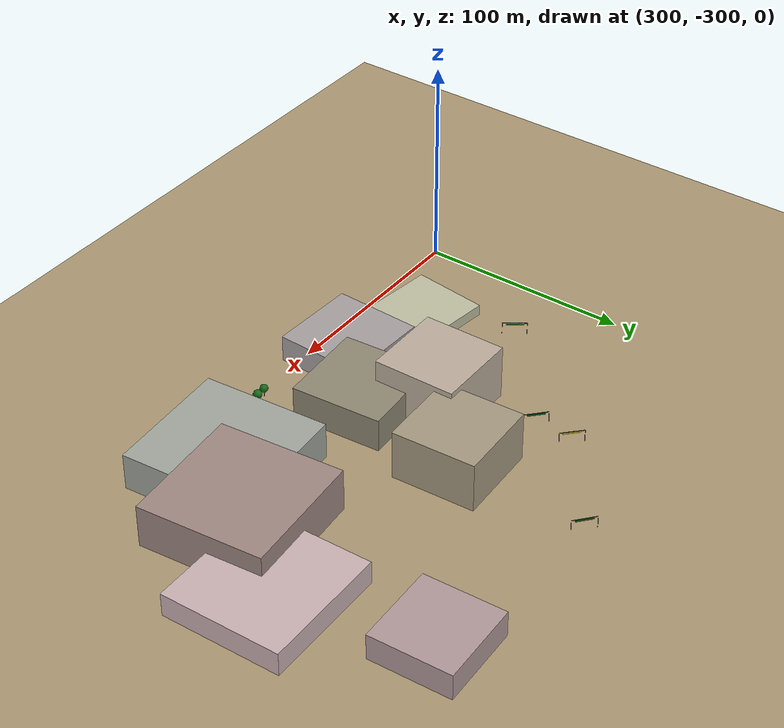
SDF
<sdf version="1.9">
 <world name="crossroad_world">
  <model name="ground_plane">
   <static>true</static>
   <pose>0 0 -0.05 0 0 0</pose>
   <link name="link">
    <collision name="collision">
     <geometry><plane><normal>0 0 1</normal><size>10000 10000</size></plane></geometry>
    </collision>
    <visual name="visual">
     <geometry><plane><normal>0 0 1</normal><size>15000 15000</size></plane></geometry>
     <material><ambient>0.68 0.60 0.45 1</ambient><diffuse>0.68 0.60 0.45 1</diffuse></material>
    </visual>
   </link>
  </model>
  <model name="gantry_36">
   <static>true</static>
   <pose>332.592 -233.294 0 0 0 2.167</pose>
   <link name="link">
    <visual name="post_l">
     <pose>-5.700 0 2.925 0 0 0</pose>
     <geometry><cylinder><radius>0.1</radius><length>5.85</length></cylinder></geometry>
     <material><ambient>0.30 0.30 0.35 1</ambient><diffuse>0.30 0.30 0.35 1</diffuse></material>
    </visual>
    <visual name="post_r">
     <pose>5.700 0 2.925 0 0 0</pose>
     <geometry><cylinder><radius>0.1</radius><length>5.85</length></cylinder></geometry>
     <material><ambient>0.30 0.30 0.35 1</ambient><diffuse>0.30 0.30 0.35 1</diffuse></material>
    </visual>
    <visual name="beam">
     <pose>0 0 6.000 0 0 0</pose>
     <geometry><box><size>11.400 0.22 0.22</size></box></geometry>
     <material><ambient>0.30 0.30 0.35 1</ambient><diffuse>0.30 0.30 0.35 1</diffuse></material>
    </visual>
    <visual name="sign_border">
     <pose>0 -0.14 5.450 0 0 0</pose>
     <geometry><box><size>8.288 0.04 0.92</size></box></geometry>
     <material><ambient>0.90 0.85 0.10 1</ambient><diffuse>0.90 0.85 0.10 1</diffuse></material>
    </visual>
    <visual name="sign_panel">
     <pose>0 -0.15 5.450 0 0 0</pose>
     <geometry><box><size>8.208 0.05 0.86</size></box></geometry>
     <material><ambient>0.05 0.38 0.10 1</ambient><diffuse>0.05 0.38 0.10 1</diffuse></material>
    </visual>
    <collision name="col_post_l">
     <pose>-5.700 0 2.925 0 0 0</pose>
     <geometry><cylinder><radius>0.1</radius><length>5.85</length></cylinder></geometry>
    </collision>
    <collision name="col_post_r">
     <pose>5.700 0 2.925 0 0 0</pose>
     <geometry><cylinder><radius>0.1</radius><length>5.85</length></cylinder></geometry>
    </collision>
    <collision name="col_beam">
     <pose>0 0 6.000 0 0 0</pose>
     <geometry><box><size>11.400 0.22 0.22</size></box></geometry>
    </collision>
   </link>
  </model>
  <model name="gantry_38">
   <static>true</static>
   <pose>381.817 -190.004 0 0 0 2.393</pose>
   <link name="link">
    <visual name="post_l">
     <pose>-5.700 0 2.925 0 0 0</pose>
     <geometry><cylinder><radius>0.1</radius><length>5.85</length></cylinder></geometry>
     <material><ambient>0.30 0.30 0.35 1</ambient><diffuse>0.30 0.30 0.35 1</diffuse></material>
    </visual>
    <visual name="post_r">
     <pose>5.700 0 2.925 0 0 0</pose>
     <geometry><cylinder><radius>0.1</radius><length>5.85</length></cylinder></geometry>
     <material><ambient>0.30 0.30 0.35 1</ambient><diffuse>0.30 0.30 0.35 1</diffuse></material>
    </visual>
    <visual name="beam">
     <pose>0 0 6.000 0 0 0</pose>
     <geometry><box><size>11.400 0.22 0.22</size></box></geometry>
     <material><ambient>0.30 0.30 0.35 1</ambient><diffuse>0.30 0.30 0.35 1</diffuse></material>
    </visual>
    <visual name="sign_border">
     <pose>0 -0.14 5.450 0 0 0</pose>
     <geometry><box><size>8.288 0.04 0.92</size></box></geometry>
     <material><ambient>0.90 0.85 0.10 1</ambient><diffuse>0.90 0.85 0.10 1</diffuse></material>
    </visual>
    <visual name="sign_panel">
     <pose>0 -0.15 5.450 0 0 0</pose>
     <geometry><box><size>8.208 0.05 0.86</size></box></geometry>
     <material><ambient>0.05 0.38 0.10 1</ambient><diffuse>0.05 0.38 0.10 1</diffuse></material>
    </visual>
    <collision name="col_post_l">
     <pose>-5.700 0 2.925 0 0 0</pose>
     <geometry><cylinder><radius>0.1</radius><length>5.85</length></cylinder></geometry>
    </collision>
    <collision name="col_post_r">
     <pose>5.700 0 2.925 0 0 0</pose>
     <geometry><cylinder><radius>0.1</radius><length>5.85</length></cylinder></geometry>
    </collision>
    <collision name="col_beam">
     <pose>0 0 6.000 0 0 0</pose>
     <geometry><box><size>11.400 0.22 0.22</size></box></geometry>
    </collision>
   </link>
  </model>
  <model name="gantry_39">
   <static>true</static>
   <pose>426.911 -137.804 0 0 0 2.439</pose>
   <link name="link">
    <visual name="post_l">
     <pose>-5.700 0 2.925 0 0 0</pose>
     <geometry><cylinder><radius>0.1</radius><length>5.85</length></cylinder></geometry>
     <material><ambient>0.30 0.30 0.35 1</ambient><diffuse>0.30 0.30 0.35 1</diffuse></material>
    </visual>
    <visual name="post_r">
     <pose>5.700 0 2.925 0 0 0</pose>
     <geometry><cylinder><radius>0.1</radius><length>5.85</length></cylinder></geometry>
     <material><ambient>0.30 0.30 0.35 1</ambient><diffuse>0.30 0.30 0.35 1</diffuse></material>
    </visual>
    <visual name="beam">
     <pose>0 0 6.000 0 0 0</pose>
     <geometry><box><size>11.400 0.22 0.22</size></box></geometry>
     <material><ambient>0.30 0.30 0.35 1</ambient><diffuse>0.30 0.30 0.35 1</diffuse></material>
    </visual>
    <visual name="sign_border">
     <pose>0 -0.14 5.450 0 0 0</pose>
     <geometry><box><size>8.288 0.04 0.92</size></box></geometry>
     <material><ambient>0.90 0.85 0.10 1</ambient><diffuse>0.90 0.85 0.10 1</diffuse></material>
    </visual>
    <visual name="sign_panel">
     <pose>0 -0.15 5.450 0 0 0</pose>
     <geometry><box><size>8.208 0.05 0.86</size></box></geometry>
     <material><ambient>0.05 0.38 0.10 1</ambient><diffuse>0.05 0.38 0.10 1</diffuse></material>
    </visual>
    <collision name="col_post_l">
     <pose>-5.700 0 2.925 0 0 0</pose>
     <geometry><cylinder><radius>0.1</radius><length>5.85</length></cylinder></geometry>
    </collision>
    <collision name="col_post_r">
     <pose>5.700 0 2.925 0 0 0</pose>
     <geometry><cylinder><radius>0.1</radius><length>5.85</length></cylinder></geometry>
    </collision>
    <collision name="col_beam">
     <pose>0 0 6.000 0 0 0</pose>
     <geometry><box><size>11.400 0.22 0.22</size></box></geometry>
    </collision>
   </link>
  </model>
  <model name="gantry_128">
   <static>true</static>
   <pose>383.256 -170.982 0 0 0 -0.756</pose>
   <link name="link">
    <visual name="post_l">
     <pose>-5.700 0 2.925 0 0 0</pose>
     <geometry><cylinder><radius>0.1</radius><length>5.85</length></cylinder></geometry>
     <material><ambient>0.30 0.30 0.35 1</ambient><diffuse>0.30 0.30 0.35 1</diffuse></material>
    </visual>
    <visual name="post_r">
     <pose>5.700 0 2.925 0 0 0</pose>
     <geometry><cylinder><radius>0.1</radius><length>5.85</length></cylinder></geometry>
     <material><ambient>0.30 0.30 0.35 1</ambient><diffuse>0.30 0.30 0.35 1</diffuse></material>
    </visual>
    <visual name="beam">
     <pose>0 0 6.000 0 0 0</pose>
     <geometry><box><size>11.400 0.22 0.22</size></box></geometry>
     <material><ambient>0.30 0.30 0.35 1</ambient><diffuse>0.30 0.30 0.35 1</diffuse></material>
    </visual>
    <visual name="sign_border">
     <pose>0 -0.14 5.450 0 0 0</pose>
     <geometry><box><size>8.288 0.04 0.92</size></box></geometry>
     <material><ambient>0.90 0.85 0.10 1</ambient><diffuse>0.90 0.85 0.10 1</diffuse></material>
    </visual>
    <visual name="sign_panel">
     <pose>0 -0.15 5.450 0 0 0</pose>
     <geometry><box><size>8.208 0.05 0.86</size></box></geometry>
     <material><ambient>0.05 0.38 0.10 1</ambient><diffuse>0.05 0.38 0.10 1</diffuse></material>
    </visual>
    <collision name="col_post_l">
     <pose>-5.700 0 2.925 0 0 0</pose>
     <geometry><cylinder><radius>0.1</radius><length>5.85</length></cylinder></geometry>
    </collision>
    <collision name="col_post_r">
     <pose>5.700 0 2.925 0 0 0</pose>
     <geometry><cylinder><radius>0.1</radius><length>5.85</length></cylinder></geometry>
    </collision>
    <collision name="col_beam">
     <pose>0 0 6.000 0 0 0</pose>
     <geometry><box><size>11.400 0.22 0.22</size></box></geometry>
    </collision>
   </link>
  </model>
  <model name="tree_105">
   <static>true</static>
   <pose>440.463 -295.918 0 0 0 0</pose>
   <link name="link">
    <visual name="trunk">
     <pose>0 0 1.752 0 0 0</pose>
     <geometry><cylinder><radius>0.153</radius><length>3.504</length></cylinder></geometry>
     <material><ambient>0.38 0.22 0.08 1</ambient><diffuse>0.38 0.22 0.08 1</diffuse></material>
    </visual>
    <visual name="canopy">
     <pose>0 0 4.856 0 0 0</pose>
     <geometry><sphere><radius>2.080</radius></sphere></geometry>
     <material><ambient>0.08 0.44 0.10 1</ambient><diffuse>0.08 0.44 0.10 1</diffuse></material>
    </visual>
    <collision name="col">
     <pose>0 0 1.752 0 0 0</pose>
     <geometry><cylinder><radius>0.153</radius><length>3.504</length></cylinder></geometry>
    </collision>
   </link>
  </model>
  <model name="tree_108">
   <static>true</static>
   <pose>435.207 -296.685 0 0 0 0</pose>
   <link name="link">
    <visual name="trunk">
     <pose>0 0 1.589 0 0 0</pose>
     <geometry><cylinder><radius>0.139</radius><length>3.178</length></cylinder></geometry>
     <material><ambient>0.38 0.22 0.08 1</ambient><diffuse>0.38 0.22 0.08 1</diffuse></material>
    </visual>
    <visual name="canopy">
     <pose>0 0 4.405 0 0 0</pose>
     <geometry><sphere><radius>1.887</radius></sphere></geometry>
     <material><ambient>0.08 0.44 0.10 1</ambient><diffuse>0.08 0.44 0.10 1</diffuse></material>
    </visual>
    <collision name="col">
     <pose>0 0 1.589 0 0 0</pose>
     <geometry><cylinder><radius>0.139</radius><length>3.178</length></cylinder></geometry>
    </collision>
   </link>
  </model>
  <model name="building_181">
   <static>true</static>
   <pose>345.054 -274.600 2.610 0 0 -0.122</pose>
   <link name="link">
    <visual name="body">
     <geometry><box><size>35.28 36.19 5.22</size></box></geometry>
     <material><ambient>0.76 0.76 0.65 1</ambient><diffuse>0.76 0.76 0.65 1</diffuse></material>
    </visual>
    <collision name="col"><geometry><box><size>35.28 36.19 5.22</size></box></geometry></collision>
   </link>
  </model>
  <model name="building_183">
   <static>true</static>
   <pose>389.520 -284.831 6.435 0 0 -0.036</pose>
   <link name="link">
    <visual name="body">
     <geometry><box><size>42.09 41.78 12.87</size></box></geometry>
     <material><ambient>0.66 0.63 0.63 1</ambient><diffuse>0.66 0.63 0.63 1</diffuse></material>
    </visual>
    <collision name="col"><geometry><box><size>42.09 41.78 12.87</size></box></geometry></collision>
   </link>
  </model>
  <model name="building_619">
   <static>true</static>
   <pose>394.082 -232.444 13.142 0 0 0.012</pose>
   <link name="link">
    <visual name="body">
     <geometry><box><size>39.35 39.14 26.28</size></box></geometry>
     <material><ambient>0.75 0.69 0.62 1</ambient><diffuse>0.75 0.69 0.62 1</diffuse></material>
    </visual>
    <collision name="col"><geometry><box><size>39.35 39.14 26.28</size></box></geometry></collision>
   </link>
  </model>
  <model name="building_620">
   <static>true</static>
   <pose>416.142 -257.276 8.047 0 0 0.076</pose>
   <link name="link">
    <visual name="body">
     <geometry><box><size>42.91 43.14 16.09</size></box></geometry>
     <material><ambient>0.57 0.54 0.46 1</ambient><diffuse>0.57 0.54 0.46 1</diffuse></material>
    </visual>
    <collision name="col"><geometry><box><size>42.91 43.14 16.09</size></box></geometry></collision>
   </link>
  </model>
  <model name="building_630">
   <static>true</static>
   <pose>425.179 -201.160 11.888 0 0 0.055</pose>
   <link name="link">
    <visual name="body">
     <geometry><box><size>39.75 39.54 23.78</size></box></geometry>
     <material><ambient>0.66 0.61 0.51 1</ambient><diffuse>0.66 0.61 0.51 1</diffuse></material>
    </visual>
    <collision name="col"><geometry><box><size>39.75 39.54 23.78</size></box></geometry></collision>
   </link>
  </model>
  <model name="building_631">
   <static>true</static>
   <pose>483.954 -277.216 8.797 0 0 0.079</pose>
   <link name="link">
    <visual name="body">
     <geometry><box><size>60.00 60.00 17.59</size></box></geometry>
     <material><ambient>0.64 0.66 0.62 1</ambient><diffuse>0.64 0.66 0.62 1</diffuse></material>
    </visual>
    <collision name="col"><geometry><box><size>60.00 60.00 17.59</size></box></geometry></collision>
   </link>
  </model>
  <model name="building_693">
   <static>true</static>
   <pose>532.874 -216.077 5.627 0 0 0.026</pose>
   <link name="link">
    <visual name="body">
     <geometry><box><size>60.00 56.30 11.25</size></box></geometry>
     <material><ambient>0.80 0.70 0.71 1</ambient><diffuse>0.80 0.70 0.71 1</diffuse></material>
    </visual>
    <collision name="col"><geometry><box><size>60.00 56.30 11.25</size></box></geometry></collision>
   </link>
  </model>
  <model name="building_694">
   <static>true</static>
   <pose>506.399 -250.303 10.280 0 0 0.097</pose>
   <link name="link">
    <visual name="body">
     <geometry><box><size>60.00 59.15 20.56</size></box></geometry>
     <material><ambient>0.63 0.54 0.52 1</ambient><diffuse>0.63 0.54 0.52 1</diffuse></material>
    </visual>
    <collision name="col"><geometry><box><size>60.00 59.15 20.56</size></box></geometry></collision>
   </link>
  </model>
  <model name="building_695">
   <static>true</static>
   <pose>515.509 -148.110 6.269 0 0 0.048</pose>
   <link name="link">
    <visual name="body">
     <geometry><box><size>39.34 38.27 12.54</size></box></geometry>
     <material><ambient>0.70 0.61 0.61 1</ambient><diffuse>0.70 0.61 0.61 1</diffuse></material>
    </visual>
    <collision name="col"><geometry><box><size>39.34 38.27 12.54</size></box></geometry></collision>
   </link>
  </model>
 </world>
</sdf>
